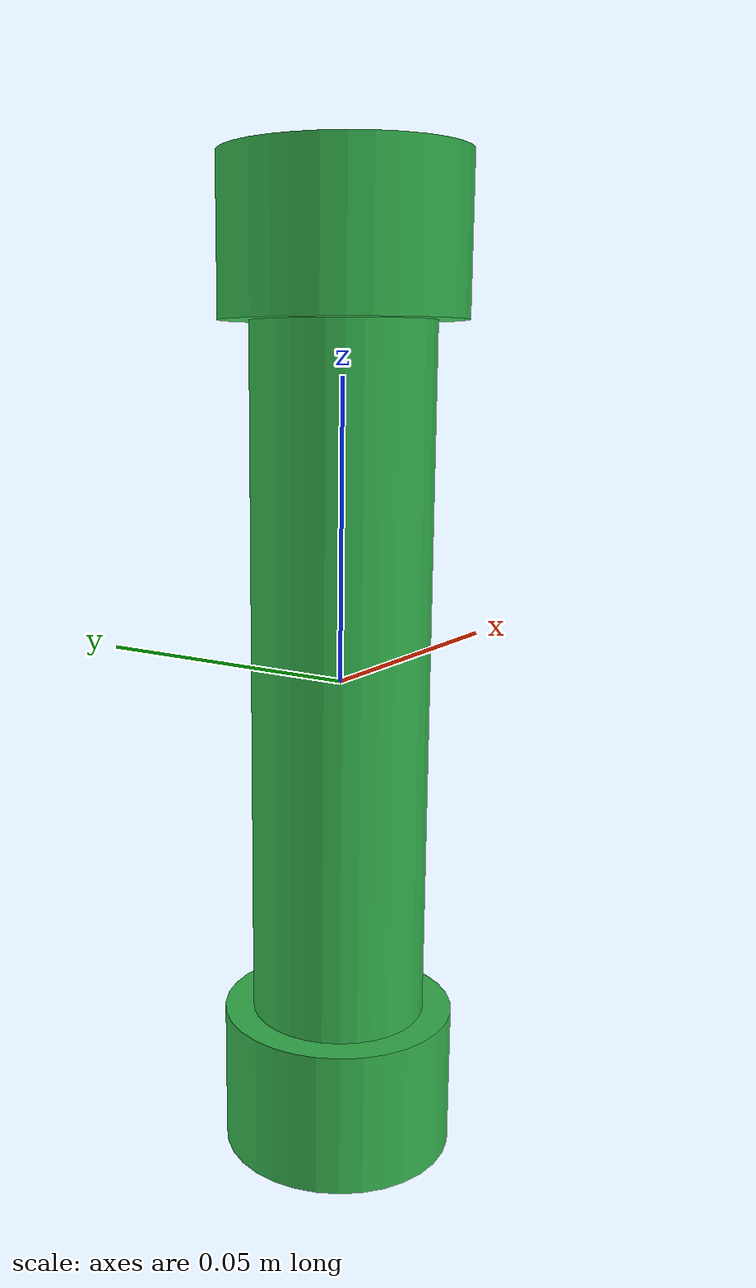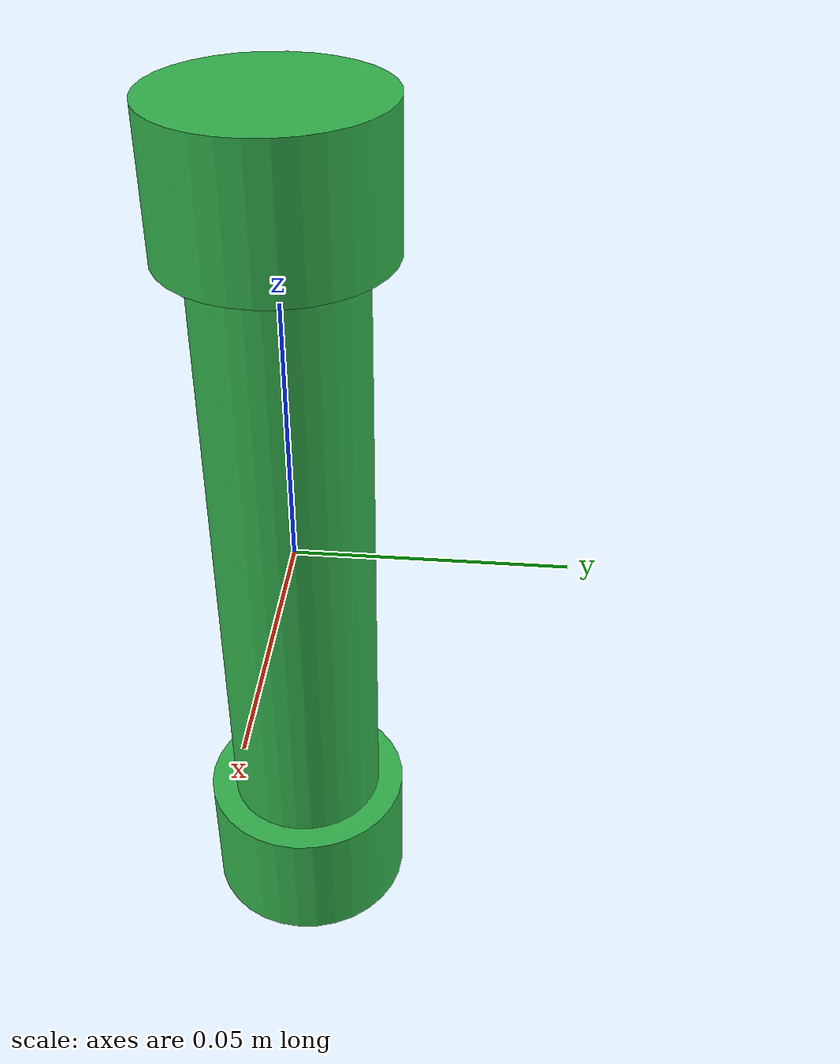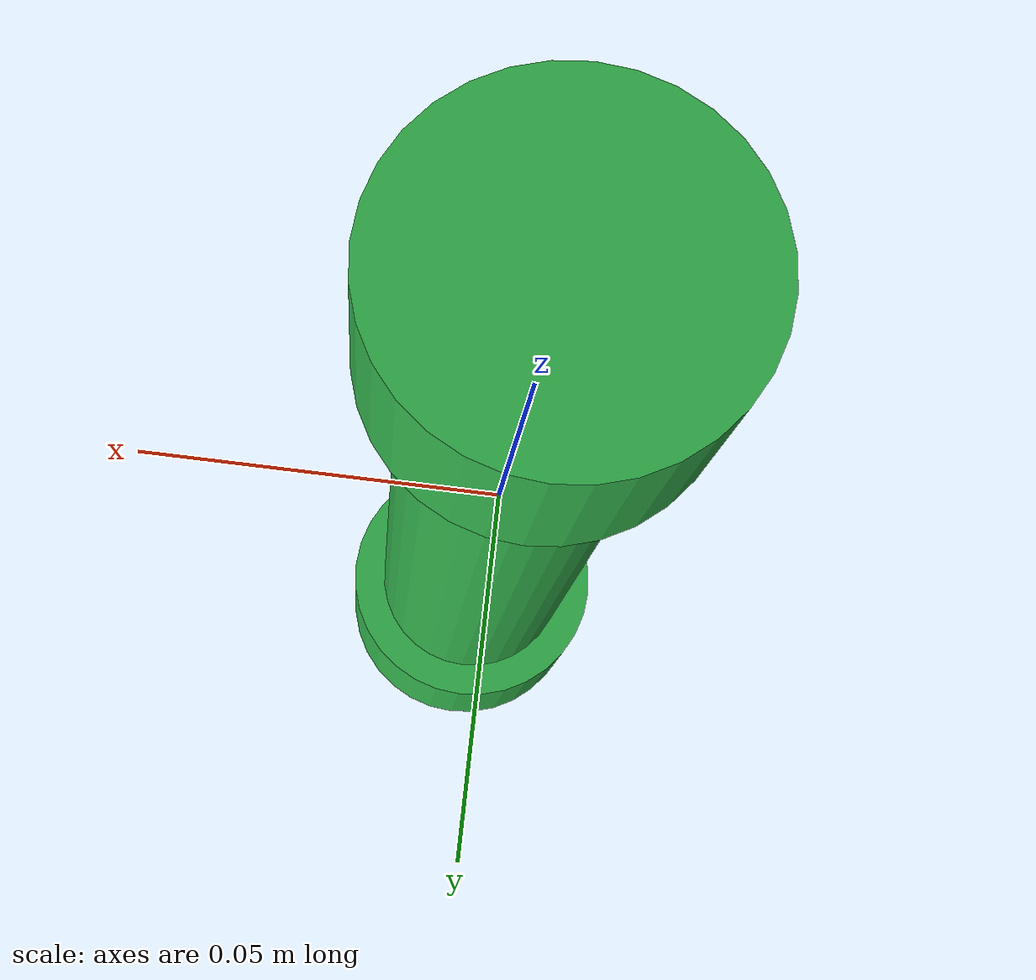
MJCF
<mujoco model="dumbbell_1kg">
  <compiler meshdir="meshes" angle="radian"/>
  <default>
    <default class="visual"><geom contype="0" conaffinity="0" group="2" rgba="0.2 0.7 0.3 1"/></default>
    <default class="collision"><geom group="3" solref="0.01 1" solimp="0.9 0.95 0.001 0.5 2"/></default>
  </default>
  <asset>
    <mesh name="dumbbell_1kg_hull0" file="dumbbell_1kg_hull0.obj"/>
    <mesh name="dumbbell_1kg_hull1" file="dumbbell_1kg_hull1.obj"/>
    <mesh name="dumbbell_1kg_hull2" file="dumbbell_1kg_hull2.obj"/>
  </asset>
  <worldbody>
    <body name="object" pos="0 0 0">
      <freejoint name="object_free"/>
      <geom type="mesh" mesh="dumbbell_1kg_hull0" class="visual"/>
      <geom type="mesh" mesh="dumbbell_1kg_hull1" class="visual"/>
      <geom type="mesh" mesh="dumbbell_1kg_hull2" class="visual"/>
      <geom type="mesh" mesh="dumbbell_1kg_hull0" class="collision"/>
      <geom type="mesh" mesh="dumbbell_1kg_hull1" class="collision"/>
      <geom type="mesh" mesh="dumbbell_1kg_hull2" class="collision"/>
      <site name="grasp" pos="0 0 0" size="0.005" rgba="0 1 0 0.5"/>
    </body>
  </worldbody>
</mujoco>
